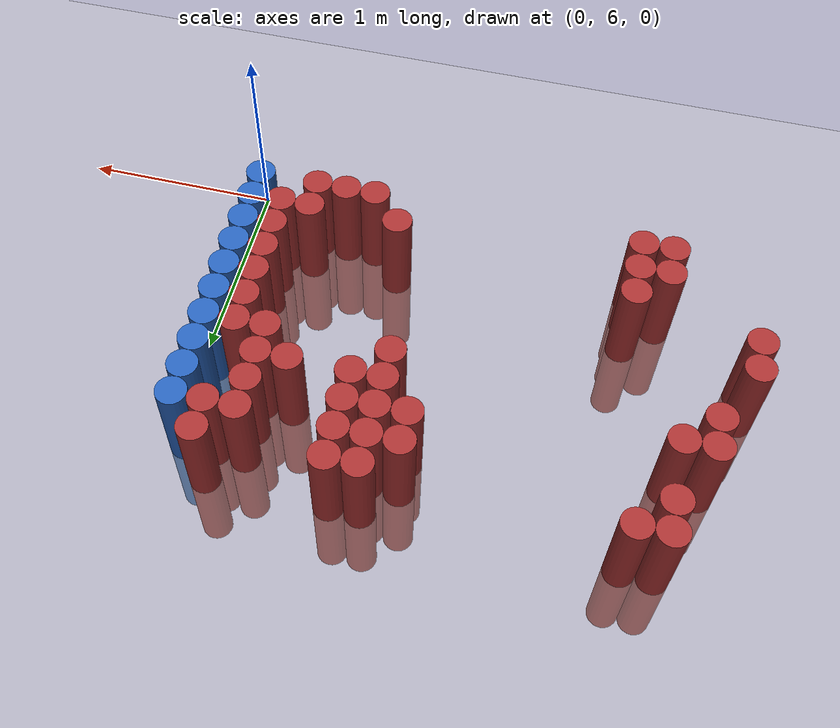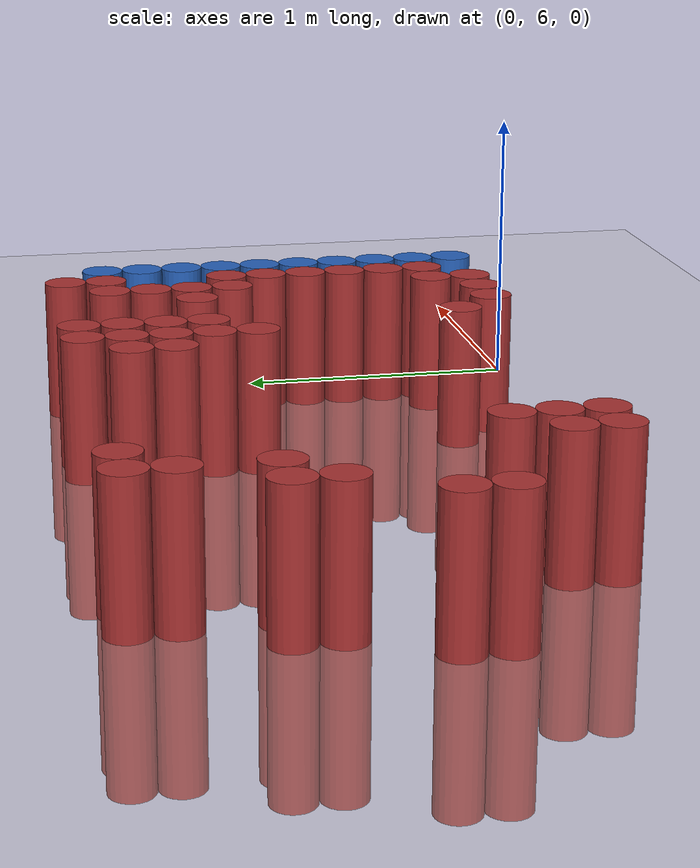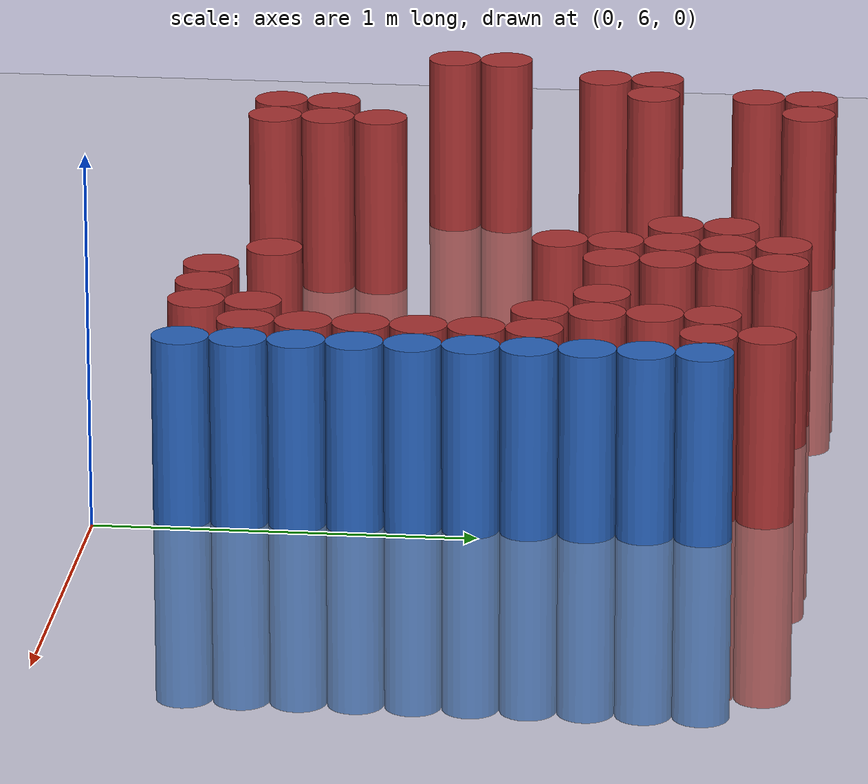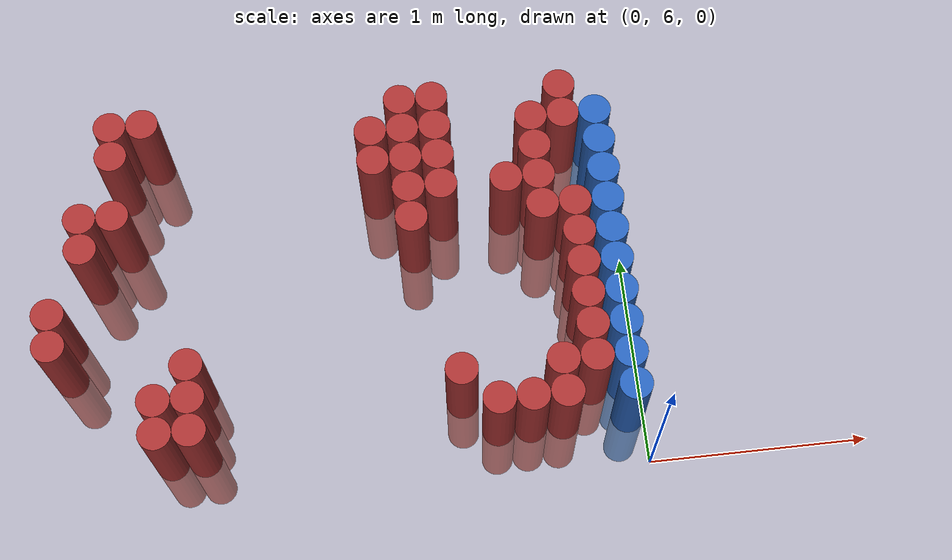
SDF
<sdf version="1.6">
 <world name="default">
  <model name="ground_plane">
   <static>1</static>
   <link name="link">
    <collision name="collision">
     <geometry><plane><normal>0 0 1</normal><size>100 100</size></plane></geometry>
     <surface><friction><ode><mu>100</mu><mu2>50</mu2></ode></friction></surface>
    </collision>
    <visual name="visual">
     <cast_shadows>0</cast_shadows>
     <geometry><plane><normal>0 0 1</normal><size>100 100</size></plane></geometry>
     <material>
      <script><uri>file://media/materials/scripts/gazebo.material</uri><name>Gazebo/Grey</name></script>
     </material>
    </visual>
   </link>
  </model>
  <model name="unit_cylinder_235">
   <static>1</static>
   <pose>-2.625000 6.675000 0.000000 0.000000 0.000000 0.000000</pose>
   <link name="link">
    <inertial>
     <mass>1</mass>
     <inertia><ixx>0.145833</ixx><ixy>0</ixy><ixz>0</ixz><iyy>0.145833</iyy><iyz>0</iyz><izz>0.125</izz></inertia>
    </inertial>
    <collision name="collision">
     <geometry><cylinder><radius>0.075000</radius><length>1</length></cylinder></geometry>
    </collision>
    <visual name="visual">
     <geometry><cylinder><radius>0.075000</radius><length>1</length></cylinder></geometry>
     <material>
      <ambient>0.648000 0.192000 0.192000 1</ambient>
      <diffuse>0.648000 0.192000 0.192000 1</diffuse>
     </material>
     <material>
      <script><name>Gazebo/Grey</name><uri>file://media/materials/scripts/gazebo.material</uri></script>
     </material>
    </visual>
   </link>
  </model>
  <model name="unit_cylinder_236">
   <static>1</static>
   <pose>-2.625000 6.825000 0.000000 0.000000 0.000000 0.000000</pose>
   <link name="link">
    <inertial>
     <mass>1</mass>
     <inertia><ixx>0.145833</ixx><ixy>0</ixy><ixz>0</ixz><iyy>0.145833</iyy><iyz>0</iyz><izz>0.125</izz></inertia>
    </inertial>
    <collision name="collision">
     <geometry><cylinder><radius>0.075000</radius><length>1</length></cylinder></geometry>
    </collision>
    <visual name="visual">
     <geometry><cylinder><radius>0.075000</radius><length>1</length></cylinder></geometry>
     <material>
      <ambient>0.648000 0.192000 0.192000 1</ambient>
      <diffuse>0.648000 0.192000 0.192000 1</diffuse>
     </material>
     <material>
      <script><name>Gazebo/Grey</name><uri>file://media/materials/scripts/gazebo.material</uri></script>
     </material>
    </visual>
   </link>
  </model>
  <model name="unit_cylinder_245">
   <static>1</static>
   <pose>-2.475000 7.125000 0.000000 0.000000 0.000000 0.000000</pose>
   <link name="link">
    <inertial>
     <mass>1</mass>
     <inertia><ixx>0.145833</ixx><ixy>0</ixy><ixz>0</ixz><iyy>0.145833</iyy><iyz>0</iyz><izz>0.125</izz></inertia>
    </inertial>
    <collision name="collision">
     <geometry><cylinder><radius>0.075000</radius><length>1</length></cylinder></geometry>
    </collision>
    <visual name="visual">
     <geometry><cylinder><radius>0.075000</radius><length>1</length></cylinder></geometry>
     <material>
      <ambient>0.648000 0.192000 0.192000 1</ambient>
      <diffuse>0.648000 0.192000 0.192000 1</diffuse>
     </material>
     <material>
      <script><name>Gazebo/Grey</name><uri>file://media/materials/scripts/gazebo.material</uri></script>
     </material>
    </visual>
   </link>
  </model>
  <model name="unit_cylinder_246">
   <static>1</static>
   <pose>-2.475000 7.275000 0.000000 0.000000 0.000000 0.000000</pose>
   <link name="link">
    <inertial>
     <mass>1</mass>
     <inertia><ixx>0.145833</ixx><ixy>0</ixy><ixz>0</ixz><iyy>0.145833</iyy><iyz>0</iyz><izz>0.125</izz></inertia>
    </inertial>
    <collision name="collision">
     <geometry><cylinder><radius>0.075000</radius><length>1</length></cylinder></geometry>
    </collision>
    <visual name="visual">
     <geometry><cylinder><radius>0.075000</radius><length>1</length></cylinder></geometry>
     <material>
      <ambient>0.648000 0.192000 0.192000 1</ambient>
      <diffuse>0.648000 0.192000 0.192000 1</diffuse>
     </material>
     <material>
      <script><name>Gazebo/Grey</name><uri>file://media/materials/scripts/gazebo.material</uri></script>
     </material>
    </visual>
   </link>
  </model>
  <model name="unit_cylinder_253">
   <static>1</static>
   <pose>-2.325000 7.275000 0.000000 0.000000 0.000000 0.000000</pose>
   <link name="link">
    <inertial>
     <mass>1</mass>
     <inertia><ixx>0.145833</ixx><ixy>0</ixy><ixz>0</ixz><iyy>0.145833</iyy><iyz>0</iyz><izz>0.125</izz></inertia>
    </inertial>
    <collision name="collision">
     <geometry><cylinder><radius>0.075000</radius><length>1</length></cylinder></geometry>
    </collision>
    <visual name="visual">
     <geometry><cylinder><radius>0.075000</radius><length>1</length></cylinder></geometry>
     <material>
      <ambient>0.648000 0.192000 0.192000 1</ambient>
      <diffuse>0.648000 0.192000 0.192000 1</diffuse>
     </material>
     <material>
      <script><name>Gazebo/Grey</name><uri>file://media/materials/scripts/gazebo.material</uri></script>
     </material>
    </visual>
   </link>
  </model>
  <model name="unit_cylinder_254">
   <static>1</static>
   <pose>-2.325000 7.575000 0.000000 0.000000 0.000000 0.000000</pose>
   <link name="link">
    <inertial>
     <mass>1</mass>
     <inertia><ixx>0.145833</ixx><ixy>0</ixy><ixz>0</ixz><iyy>0.145833</iyy><iyz>0</iyz><izz>0.125</izz></inertia>
    </inertial>
    <collision name="collision">
     <geometry><cylinder><radius>0.075000</radius><length>1</length></cylinder></geometry>
    </collision>
    <visual name="visual">
     <geometry><cylinder><radius>0.075000</radius><length>1</length></cylinder></geometry>
     <material>
      <ambient>0.648000 0.192000 0.192000 1</ambient>
      <diffuse>0.648000 0.192000 0.192000 1</diffuse>
     </material>
     <material>
      <script><name>Gazebo/Grey</name><uri>file://media/materials/scripts/gazebo.material</uri></script>
     </material>
    </visual>
   </link>
  </model>
  <model name="unit_cylinder_255">
   <static>1</static>
   <pose>-2.325000 7.725000 0.000000 0.000000 0.000000 0.000000</pose>
   <link name="link">
    <inertial>
     <mass>1</mass>
     <inertia><ixx>0.145833</ixx><ixy>0</ixy><ixz>0</ixz><iyy>0.145833</iyy><iyz>0</iyz><izz>0.125</izz></inertia>
    </inertial>
    <collision name="collision">
     <geometry><cylinder><radius>0.075000</radius><length>1</length></cylinder></geometry>
    </collision>
    <visual name="visual">
     <geometry><cylinder><radius>0.075000</radius><length>1</length></cylinder></geometry>
     <material>
      <ambient>0.648000 0.192000 0.192000 1</ambient>
      <diffuse>0.648000 0.192000 0.192000 1</diffuse>
     </material>
     <material>
      <script><name>Gazebo/Grey</name><uri>file://media/materials/scripts/gazebo.material</uri></script>
     </material>
    </visual>
   </link>
  </model>
  <model name="unit_cylinder_263">
   <static>1</static>
   <pose>-2.175000 6.225000 0.000000 0.000000 0.000000 0.000000</pose>
   <link name="link">
    <inertial>
     <mass>1</mass>
     <inertia><ixx>0.145833</ixx><ixy>0</ixy><ixz>0</ixz><iyy>0.145833</iyy><iyz>0</iyz><izz>0.125</izz></inertia>
    </inertial>
    <collision name="collision">
     <geometry><cylinder><radius>0.075000</radius><length>1</length></cylinder></geometry>
    </collision>
    <visual name="visual">
     <geometry><cylinder><radius>0.075000</radius><length>1</length></cylinder></geometry>
     <material>
      <ambient>0.648000 0.192000 0.192000 1</ambient>
      <diffuse>0.648000 0.192000 0.192000 1</diffuse>
     </material>
     <material>
      <script><name>Gazebo/Grey</name><uri>file://media/materials/scripts/gazebo.material</uri></script>
     </material>
    </visual>
   </link>
  </model>
  <model name="unit_cylinder_264">
   <static>1</static>
   <pose>-2.175000 6.375000 0.000000 0.000000 0.000000 0.000000</pose>
   <link name="link">
    <inertial>
     <mass>1</mass>
     <inertia><ixx>0.145833</ixx><ixy>0</ixy><ixz>0</ixz><iyy>0.145833</iyy><iyz>0</iyz><izz>0.125</izz></inertia>
    </inertial>
    <collision name="collision">
     <geometry><cylinder><radius>0.075000</radius><length>1</length></cylinder></geometry>
    </collision>
    <visual name="visual">
     <geometry><cylinder><radius>0.075000</radius><length>1</length></cylinder></geometry>
     <material>
      <ambient>0.648000 0.192000 0.192000 1</ambient>
      <diffuse>0.648000 0.192000 0.192000 1</diffuse>
     </material>
     <material>
      <script><name>Gazebo/Grey</name><uri>file://media/materials/scripts/gazebo.material</uri></script>
     </material>
    </visual>
   </link>
  </model>
  <model name="unit_cylinder_265">
   <static>1</static>
   <pose>-2.175000 7.725000 0.000000 0.000000 0.000000 0.000000</pose>
   <link name="link">
    <inertial>
     <mass>1</mass>
     <inertia><ixx>0.145833</ixx><ixy>0</ixy><ixz>0</ixz><iyy>0.145833</iyy><iyz>0</iyz><izz>0.125</izz></inertia>
    </inertial>
    <collision name="collision">
     <geometry><cylinder><radius>0.075000</radius><length>1</length></cylinder></geometry>
    </collision>
    <visual name="visual">
     <geometry><cylinder><radius>0.075000</radius><length>1</length></cylinder></geometry>
     <material>
      <ambient>0.648000 0.192000 0.192000 1</ambient>
      <diffuse>0.648000 0.192000 0.192000 1</diffuse>
     </material>
     <material>
      <script><name>Gazebo/Grey</name><uri>file://media/materials/scripts/gazebo.material</uri></script>
     </material>
    </visual>
   </link>
  </model>
  <model name="unit_cylinder_270">
   <static>1</static>
   <pose>-2.025000 6.225000 0.000000 0.000000 0.000000 0.000000</pose>
   <link name="link">
    <inertial>
     <mass>1</mass>
     <inertia><ixx>0.145833</ixx><ixy>0</ixy><ixz>0</ixz><iyy>0.145833</iyy><iyz>0</iyz><izz>0.125</izz></inertia>
    </inertial>
    <collision name="collision">
     <geometry><cylinder><radius>0.075000</radius><length>1</length></cylinder></geometry>
    </collision>
    <visual name="visual">
     <geometry><cylinder><radius>0.075000</radius><length>1</length></cylinder></geometry>
     <material>
      <ambient>0.648000 0.192000 0.192000 1</ambient>
      <diffuse>0.648000 0.192000 0.192000 1</diffuse>
     </material>
     <material>
      <script><name>Gazebo/Grey</name><uri>file://media/materials/scripts/gazebo.material</uri></script>
     </material>
    </visual>
   </link>
  </model>
  <model name="unit_cylinder_271">
   <static>1</static>
   <pose>-2.025000 6.375000 0.000000 0.000000 0.000000 0.000000</pose>
   <link name="link">
    <inertial>
     <mass>1</mass>
     <inertia><ixx>0.145833</ixx><ixy>0</ixy><ixz>0</ixz><iyy>0.145833</iyy><iyz>0</iyz><izz>0.125</izz></inertia>
    </inertial>
    <collision name="collision">
     <geometry><cylinder><radius>0.075000</radius><length>1</length></cylinder></geometry>
    </collision>
    <visual name="visual">
     <geometry><cylinder><radius>0.075000</radius><length>1</length></cylinder></geometry>
     <material>
      <ambient>0.648000 0.192000 0.192000 1</ambient>
      <diffuse>0.648000 0.192000 0.192000 1</diffuse>
     </material>
     <material>
      <script><name>Gazebo/Grey</name><uri>file://media/materials/scripts/gazebo.material</uri></script>
     </material>
    </visual>
   </link>
  </model>
  <model name="unit_cylinder_272">
   <static>1</static>
   <pose>-2.025000 6.525000 0.000000 0.000000 0.000000 0.000000</pose>
   <link name="link">
    <inertial>
     <mass>1</mass>
     <inertia><ixx>0.145833</ixx><ixy>0</ixy><ixz>0</ixz><iyy>0.145833</iyy><iyz>0</iyz><izz>0.125</izz></inertia>
    </inertial>
    <collision name="collision">
     <geometry><cylinder><radius>0.075000</radius><length>1</length></cylinder></geometry>
    </collision>
    <visual name="visual">
     <geometry><cylinder><radius>0.075000</radius><length>1</length></cylinder></geometry>
     <material>
      <ambient>0.648000 0.192000 0.192000 1</ambient>
      <diffuse>0.648000 0.192000 0.192000 1</diffuse>
     </material>
     <material>
      <script><name>Gazebo/Grey</name><uri>file://media/materials/scripts/gazebo.material</uri></script>
     </material>
    </visual>
   </link>
  </model>
  <model name="unit_cylinder_275">
   <static>1</static>
   <pose>-1.125000 7.425000 0.000000 0.000000 0.000000 0.000000</pose>
   <link name="link">
    <inertial>
     <mass>1</mass>
     <inertia><ixx>0.145833</ixx><ixy>0</ixy><ixz>0</ixz><iyy>0.145833</iyy><iyz>0</iyz><izz>0.125</izz></inertia>
    </inertial>
    <collision name="collision">
     <geometry><cylinder><radius>0.075000</radius><length>1</length></cylinder></geometry>
    </collision>
    <visual name="visual">
     <geometry><cylinder><radius>0.075000</radius><length>1</length></cylinder></geometry>
     <material>
      <ambient>0.648000 0.192000 0.192000 1</ambient>
      <diffuse>0.648000 0.192000 0.192000 1</diffuse>
     </material>
     <material>
      <script><name>Gazebo/Grey</name><uri>file://media/materials/scripts/gazebo.material</uri></script>
     </material>
    </visual>
   </link>
  </model>
  <model name="unit_cylinder_276">
   <static>1</static>
   <pose>-1.125000 7.575000 0.000000 0.000000 0.000000 0.000000</pose>
   <link name="link">
    <inertial>
     <mass>1</mass>
     <inertia><ixx>0.145833</ixx><ixy>0</ixy><ixz>0</ixz><iyy>0.145833</iyy><iyz>0</iyz><izz>0.125</izz></inertia>
    </inertial>
    <collision name="collision">
     <geometry><cylinder><radius>0.075000</radius><length>1</length></cylinder></geometry>
    </collision>
    <visual name="visual">
     <geometry><cylinder><radius>0.075000</radius><length>1</length></cylinder></geometry>
     <material>
      <ambient>0.648000 0.192000 0.192000 1</ambient>
      <diffuse>0.648000 0.192000 0.192000 1</diffuse>
     </material>
     <material>
      <script><name>Gazebo/Grey</name><uri>file://media/materials/scripts/gazebo.material</uri></script>
     </material>
    </visual>
   </link>
  </model>
  <model name="unit_cylinder_279">
   <static>1</static>
   <pose>-0.975000 7.125000 0.000000 0.000000 0.000000 0.000000</pose>
   <link name="link">
    <inertial>
     <mass>1</mass>
     <inertia><ixx>0.145833</ixx><ixy>0</ixy><ixz>0</ixz><iyy>0.145833</iyy><iyz>0</iyz><izz>0.125</izz></inertia>
    </inertial>
    <collision name="collision">
     <geometry><cylinder><radius>0.075000</radius><length>1</length></cylinder></geometry>
    </collision>
    <visual name="visual">
     <geometry><cylinder><radius>0.075000</radius><length>1</length></cylinder></geometry>
     <material>
      <ambient>0.648000 0.192000 0.192000 1</ambient>
      <diffuse>0.648000 0.192000 0.192000 1</diffuse>
     </material>
     <material>
      <script><name>Gazebo/Grey</name><uri>file://media/materials/scripts/gazebo.material</uri></script>
     </material>
    </visual>
   </link>
  </model>
  <model name="unit_cylinder_280">
   <static>1</static>
   <pose>-0.975000 7.275000 0.000000 0.000000 0.000000 0.000000</pose>
   <link name="link">
    <inertial>
     <mass>1</mass>
     <inertia><ixx>0.145833</ixx><ixy>0</ixy><ixz>0</ixz><iyy>0.145833</iyy><iyz>0</iyz><izz>0.125</izz></inertia>
    </inertial>
    <collision name="collision">
     <geometry><cylinder><radius>0.075000</radius><length>1</length></cylinder></geometry>
    </collision>
    <visual name="visual">
     <geometry><cylinder><radius>0.075000</radius><length>1</length></cylinder></geometry>
     <material>
      <ambient>0.648000 0.192000 0.192000 1</ambient>
      <diffuse>0.648000 0.192000 0.192000 1</diffuse>
     </material>
     <material>
      <script><name>Gazebo/Grey</name><uri>file://media/materials/scripts/gazebo.material</uri></script>
     </material>
    </visual>
   </link>
  </model>
  <model name="unit_cylinder_281">
   <static>1</static>
   <pose>-0.975000 7.425000 0.000000 0.000000 0.000000 0.000000</pose>
   <link name="link">
    <inertial>
     <mass>1</mass>
     <inertia><ixx>0.145833</ixx><ixy>0</ixy><ixz>0</ixz><iyy>0.145833</iyy><iyz>0</iyz><izz>0.125</izz></inertia>
    </inertial>
    <collision name="collision">
     <geometry><cylinder><radius>0.075000</radius><length>1</length></cylinder></geometry>
    </collision>
    <visual name="visual">
     <geometry><cylinder><radius>0.075000</radius><length>1</length></cylinder></geometry>
     <material>
      <ambient>0.648000 0.192000 0.192000 1</ambient>
      <diffuse>0.648000 0.192000 0.192000 1</diffuse>
     </material>
     <material>
      <script><name>Gazebo/Grey</name><uri>file://media/materials/scripts/gazebo.material</uri></script>
     </material>
    </visual>
   </link>
  </model>
  <model name="unit_cylinder_282">
   <static>1</static>
   <pose>-0.975000 7.575000 0.000000 0.000000 0.000000 0.000000</pose>
   <link name="link">
    <inertial>
     <mass>1</mass>
     <inertia><ixx>0.145833</ixx><ixy>0</ixy><ixz>0</ixz><iyy>0.145833</iyy><iyz>0</iyz><izz>0.125</izz></inertia>
    </inertial>
    <collision name="collision">
     <geometry><cylinder><radius>0.075000</radius><length>1</length></cylinder></geometry>
    </collision>
    <visual name="visual">
     <geometry><cylinder><radius>0.075000</radius><length>1</length></cylinder></geometry>
     <material>
      <ambient>0.648000 0.192000 0.192000 1</ambient>
      <diffuse>0.648000 0.192000 0.192000 1</diffuse>
     </material>
     <material>
      <script><name>Gazebo/Grey</name><uri>file://media/materials/scripts/gazebo.material</uri></script>
     </material>
    </visual>
   </link>
  </model>
  <model name="unit_cylinder_283">
   <static>1</static>
   <pose>-0.975000 7.725000 0.000000 0.000000 0.000000 0.000000</pose>
   <link name="link">
    <inertial>
     <mass>1</mass>
     <inertia><ixx>0.145833</ixx><ixy>0</ixy><ixz>0</ixz><iyy>0.145833</iyy><iyz>0</iyz><izz>0.125</izz></inertia>
    </inertial>
    <collision name="collision">
     <geometry><cylinder><radius>0.075000</radius><length>1</length></cylinder></geometry>
    </collision>
    <visual name="visual">
     <geometry><cylinder><radius>0.075000</radius><length>1</length></cylinder></geometry>
     <material>
      <ambient>0.648000 0.192000 0.192000 1</ambient>
      <diffuse>0.648000 0.192000 0.192000 1</diffuse>
     </material>
     <material>
      <script><name>Gazebo/Grey</name><uri>file://media/materials/scripts/gazebo.material</uri></script>
     </material>
    </visual>
   </link>
  </model>
  <model name="unit_cylinder_285">
   <static>1</static>
   <pose>-0.825000 6.375000 0.000000 0.000000 0.000000 0.000000</pose>
   <link name="link">
    <inertial>
     <mass>1</mass>
     <inertia><ixx>0.145833</ixx><ixy>0</ixy><ixz>0</ixz><iyy>0.145833</iyy><iyz>0</iyz><izz>0.125</izz></inertia>
    </inertial>
    <collision name="collision">
     <geometry><cylinder><radius>0.075000</radius><length>1</length></cylinder></geometry>
    </collision>
    <visual name="visual">
     <geometry><cylinder><radius>0.075000</radius><length>1</length></cylinder></geometry>
     <material>
      <ambient>0.648000 0.192000 0.192000 1</ambient>
      <diffuse>0.648000 0.192000 0.192000 1</diffuse>
     </material>
     <material>
      <script><name>Gazebo/Grey</name><uri>file://media/materials/scripts/gazebo.material</uri></script>
     </material>
    </visual>
   </link>
  </model>
  <model name="unit_cylinder_286">
   <static>1</static>
   <pose>-0.825000 7.275000 0.000000 0.000000 0.000000 0.000000</pose>
   <link name="link">
    <inertial>
     <mass>1</mass>
     <inertia><ixx>0.145833</ixx><ixy>0</ixy><ixz>0</ixz><iyy>0.145833</iyy><iyz>0</iyz><izz>0.125</izz></inertia>
    </inertial>
    <collision name="collision">
     <geometry><cylinder><radius>0.075000</radius><length>1</length></cylinder></geometry>
    </collision>
    <visual name="visual">
     <geometry><cylinder><radius>0.075000</radius><length>1</length></cylinder></geometry>
     <material>
      <ambient>0.648000 0.192000 0.192000 1</ambient>
      <diffuse>0.648000 0.192000 0.192000 1</diffuse>
     </material>
     <material>
      <script><name>Gazebo/Grey</name><uri>file://media/materials/scripts/gazebo.material</uri></script>
     </material>
    </visual>
   </link>
  </model>
  <model name="unit_cylinder_287">
   <static>1</static>
   <pose>-0.825000 7.425000 0.000000 0.000000 0.000000 0.000000</pose>
   <link name="link">
    <inertial>
     <mass>1</mass>
     <inertia><ixx>0.145833</ixx><ixy>0</ixy><ixz>0</ixz><iyy>0.145833</iyy><iyz>0</iyz><izz>0.125</izz></inertia>
    </inertial>
    <collision name="collision">
     <geometry><cylinder><radius>0.075000</radius><length>1</length></cylinder></geometry>
    </collision>
    <visual name="visual">
     <geometry><cylinder><radius>0.075000</radius><length>1</length></cylinder></geometry>
     <material>
      <ambient>0.648000 0.192000 0.192000 1</ambient>
      <diffuse>0.648000 0.192000 0.192000 1</diffuse>
     </material>
     <material>
      <script><name>Gazebo/Grey</name><uri>file://media/materials/scripts/gazebo.material</uri></script>
     </material>
    </visual>
   </link>
  </model>
  <model name="unit_cylinder_288">
   <static>1</static>
   <pose>-0.825000 7.575000 0.000000 0.000000 0.000000 0.000000</pose>
   <link name="link">
    <inertial>
     <mass>1</mass>
     <inertia><ixx>0.145833</ixx><ixy>0</ixy><ixz>0</ixz><iyy>0.145833</iyy><iyz>0</iyz><izz>0.125</izz></inertia>
    </inertial>
    <collision name="collision">
     <geometry><cylinder><radius>0.075000</radius><length>1</length></cylinder></geometry>
    </collision>
    <visual name="visual">
     <geometry><cylinder><radius>0.075000</radius><length>1</length></cylinder></geometry>
     <material>
      <ambient>0.648000 0.192000 0.192000 1</ambient>
      <diffuse>0.648000 0.192000 0.192000 1</diffuse>
     </material>
     <material>
      <script><name>Gazebo/Grey</name><uri>file://media/materials/scripts/gazebo.material</uri></script>
     </material>
    </visual>
   </link>
  </model>
  <model name="unit_cylinder_289">
   <static>1</static>
   <pose>-0.825000 7.725000 0.000000 0.000000 0.000000 0.000000</pose>
   <link name="link">
    <inertial>
     <mass>1</mass>
     <inertia><ixx>0.145833</ixx><ixy>0</ixy><ixz>0</ixz><iyy>0.145833</iyy><iyz>0</iyz><izz>0.125</izz></inertia>
    </inertial>
    <collision name="collision">
     <geometry><cylinder><radius>0.075000</radius><length>1</length></cylinder></geometry>
    </collision>
    <visual name="visual">
     <geometry><cylinder><radius>0.075000</radius><length>1</length></cylinder></geometry>
     <material>
      <ambient>0.648000 0.192000 0.192000 1</ambient>
      <diffuse>0.648000 0.192000 0.192000 1</diffuse>
     </material>
     <material>
      <script><name>Gazebo/Grey</name><uri>file://media/materials/scripts/gazebo.material</uri></script>
     </material>
    </visual>
   </link>
  </model>
  <model name="unit_cylinder_294">
   <static>1</static>
   <pose>-0.675000 6.225000 0.000000 0.000000 0.000000 0.000000</pose>
   <link name="link">
    <inertial>
     <mass>1</mass>
     <inertia><ixx>0.145833</ixx><ixy>0</ixy><ixz>0</ixz><iyy>0.145833</iyy><iyz>0</iyz><izz>0.125</izz></inertia>
    </inertial>
    <collision name="collision">
     <geometry><cylinder><radius>0.075000</radius><length>1</length></cylinder></geometry>
    </collision>
    <visual name="visual">
     <geometry><cylinder><radius>0.075000</radius><length>1</length></cylinder></geometry>
     <material>
      <ambient>0.648000 0.192000 0.192000 1</ambient>
      <diffuse>0.648000 0.192000 0.192000 1</diffuse>
     </material>
     <material>
      <script><name>Gazebo/Grey</name><uri>file://media/materials/scripts/gazebo.material</uri></script>
     </material>
    </visual>
   </link>
  </model>
  <model name="unit_cylinder_298">
   <static>1</static>
   <pose>-0.525000 6.225000 0.000000 0.000000 0.000000 0.000000</pose>
   <link name="link">
    <inertial>
     <mass>1</mass>
     <inertia><ixx>0.145833</ixx><ixy>0</ixy><ixz>0</ixz><iyy>0.145833</iyy><iyz>0</iyz><izz>0.125</izz></inertia>
    </inertial>
    <collision name="collision">
     <geometry><cylinder><radius>0.075000</radius><length>1</length></cylinder></geometry>
    </collision>
    <visual name="visual">
     <geometry><cylinder><radius>0.075000</radius><length>1</length></cylinder></geometry>
     <material>
      <ambient>0.648000 0.192000 0.192000 1</ambient>
      <diffuse>0.648000 0.192000 0.192000 1</diffuse>
     </material>
     <material>
      <script><name>Gazebo/Grey</name><uri>file://media/materials/scripts/gazebo.material</uri></script>
     </material>
    </visual>
   </link>
  </model>
  <model name="unit_cylinder_299">
   <static>1</static>
   <pose>-0.525000 7.275000 0.000000 0.000000 0.000000 0.000000</pose>
   <link name="link">
    <inertial>
     <mass>1</mass>
     <inertia><ixx>0.145833</ixx><ixy>0</ixy><ixz>0</ixz><iyy>0.145833</iyy><iyz>0</iyz><izz>0.125</izz></inertia>
    </inertial>
    <collision name="collision">
     <geometry><cylinder><radius>0.075000</radius><length>1</length></cylinder></geometry>
    </collision>
    <visual name="visual">
     <geometry><cylinder><radius>0.075000</radius><length>1</length></cylinder></geometry>
     <material>
      <ambient>0.648000 0.192000 0.192000 1</ambient>
      <diffuse>0.648000 0.192000 0.192000 1</diffuse>
     </material>
     <material>
      <script><name>Gazebo/Grey</name><uri>file://media/materials/scripts/gazebo.material</uri></script>
     </material>
    </visual>
   </link>
  </model>
  <model name="unit_cylinder_303">
   <static>1</static>
   <pose>-0.375000 6.225000 0.000000 0.000000 0.000000 0.000000</pose>
   <link name="link">
    <inertial>
     <mass>1</mass>
     <inertia><ixx>0.145833</ixx><ixy>0</ixy><ixz>0</ixz><iyy>0.145833</iyy><iyz>0</iyz><izz>0.125</izz></inertia>
    </inertial>
    <collision name="collision">
     <geometry><cylinder><radius>0.075000</radius><length>1</length></cylinder></geometry>
    </collision>
    <visual name="visual">
     <geometry><cylinder><radius>0.075000</radius><length>1</length></cylinder></geometry>
     <material>
      <ambient>0.648000 0.192000 0.192000 1</ambient>
      <diffuse>0.648000 0.192000 0.192000 1</diffuse>
     </material>
     <material>
      <script><name>Gazebo/Grey</name><uri>file://media/materials/scripts/gazebo.material</uri></script>
     </material>
    </visual>
   </link>
  </model>
  <model name="unit_cylinder_304">
   <static>1</static>
   <pose>-0.375000 6.375000 0.000000 0.000000 0.000000 0.000000</pose>
   <link name="link">
    <inertial>
     <mass>1</mass>
     <inertia><ixx>0.145833</ixx><ixy>0</ixy><ixz>0</ixz><iyy>0.145833</iyy><iyz>0</iyz><izz>0.125</izz></inertia>
    </inertial>
    <collision name="collision">
     <geometry><cylinder><radius>0.075000</radius><length>1</length></cylinder></geometry>
    </collision>
    <visual name="visual">
     <geometry><cylinder><radius>0.075000</radius><length>1</length></cylinder></geometry>
     <material>
      <ambient>0.648000 0.192000 0.192000 1</ambient>
      <diffuse>0.648000 0.192000 0.192000 1</diffuse>
     </material>
     <material>
      <script><name>Gazebo/Grey</name><uri>file://media/materials/scripts/gazebo.material</uri></script>
     </material>
    </visual>
   </link>
  </model>
  <model name="unit_cylinder_305">
   <static>1</static>
   <pose>-0.375000 7.125000 0.000000 0.000000 0.000000 0.000000</pose>
   <link name="link">
    <inertial>
     <mass>1</mass>
     <inertia><ixx>0.145833</ixx><ixy>0</ixy><ixz>0</ixz><iyy>0.145833</iyy><iyz>0</iyz><izz>0.125</izz></inertia>
    </inertial>
    <collision name="collision">
     <geometry><cylinder><radius>0.075000</radius><length>1</length></cylinder></geometry>
    </collision>
    <visual name="visual">
     <geometry><cylinder><radius>0.075000</radius><length>1</length></cylinder></geometry>
     <material>
      <ambient>0.648000 0.192000 0.192000 1</ambient>
      <diffuse>0.648000 0.192000 0.192000 1</diffuse>
     </material>
     <material>
      <script><name>Gazebo/Grey</name><uri>file://media/materials/scripts/gazebo.material</uri></script>
     </material>
    </visual>
   </link>
  </model>
  <model name="unit_cylinder_306">
   <static>1</static>
   <pose>-0.375000 7.275000 0.000000 0.000000 0.000000 0.000000</pose>
   <link name="link">
    <inertial>
     <mass>1</mass>
     <inertia><ixx>0.145833</ixx><ixy>0</ixy><ixz>0</ixz><iyy>0.145833</iyy><iyz>0</iyz><izz>0.125</izz></inertia>
    </inertial>
    <collision name="collision">
     <geometry><cylinder><radius>0.075000</radius><length>1</length></cylinder></geometry>
    </collision>
    <visual name="visual">
     <geometry><cylinder><radius>0.075000</radius><length>1</length></cylinder></geometry>
     <material>
      <ambient>0.648000 0.192000 0.192000 1</ambient>
      <diffuse>0.648000 0.192000 0.192000 1</diffuse>
     </material>
     <material>
      <script><name>Gazebo/Grey</name><uri>file://media/materials/scripts/gazebo.material</uri></script>
     </material>
    </visual>
   </link>
  </model>
  <model name="unit_cylinder_307">
   <static>1</static>
   <pose>-0.375000 7.425000 0.000000 0.000000 0.000000 0.000000</pose>
   <link name="link">
    <inertial>
     <mass>1</mass>
     <inertia><ixx>0.145833</ixx><ixy>0</ixy><ixz>0</ixz><iyy>0.145833</iyy><iyz>0</iyz><izz>0.125</izz></inertia>
    </inertial>
    <collision name="collision">
     <geometry><cylinder><radius>0.075000</radius><length>1</length></cylinder></geometry>
    </collision>
    <visual name="visual">
     <geometry><cylinder><radius>0.075000</radius><length>1</length></cylinder></geometry>
     <material>
      <ambient>0.648000 0.192000 0.192000 1</ambient>
      <diffuse>0.648000 0.192000 0.192000 1</diffuse>
     </material>
     <material>
      <script><name>Gazebo/Grey</name><uri>file://media/materials/scripts/gazebo.material</uri></script>
     </material>
    </visual>
   </link>
  </model>
  <model name="unit_cylinder_308">
   <static>1</static>
   <pose>-0.375000 7.575000 0.000000 0.000000 0.000000 0.000000</pose>
   <link name="link">
    <inertial>
     <mass>1</mass>
     <inertia><ixx>0.145833</ixx><ixy>0</ixy><ixz>0</ixz><iyy>0.145833</iyy><iyz>0</iyz><izz>0.125</izz></inertia>
    </inertial>
    <collision name="collision">
     <geometry><cylinder><radius>0.075000</radius><length>1</length></cylinder></geometry>
    </collision>
    <visual name="visual">
     <geometry><cylinder><radius>0.075000</radius><length>1</length></cylinder></geometry>
     <material>
      <ambient>0.648000 0.192000 0.192000 1</ambient>
      <diffuse>0.648000 0.192000 0.192000 1</diffuse>
     </material>
     <material>
      <script><name>Gazebo/Grey</name><uri>file://media/materials/scripts/gazebo.material</uri></script>
     </material>
    </visual>
   </link>
  </model>
  <model name="unit_cylinder_318">
   <static>1</static>
   <pose>-0.225000 6.375000 0.000000 0.000000 0.000000 0.000000</pose>
   <link name="link">
    <inertial>
     <mass>1</mass>
     <inertia><ixx>0.145833</ixx><ixy>0</ixy><ixz>0</ixz><iyy>0.145833</iyy><iyz>0</iyz><izz>0.125</izz></inertia>
    </inertial>
    <collision name="collision">
     <geometry><cylinder><radius>0.075000</radius><length>1</length></cylinder></geometry>
    </collision>
    <visual name="visual">
     <geometry><cylinder><radius>0.075000</radius><length>1</length></cylinder></geometry>
     <material>
      <ambient>0.648000 0.192000 0.192000 1</ambient>
      <diffuse>0.648000 0.192000 0.192000 1</diffuse>
     </material>
     <material>
      <script><name>Gazebo/Grey</name><uri>file://media/materials/scripts/gazebo.material</uri></script>
     </material>
    </visual>
   </link>
  </model>
  <model name="unit_cylinder_319">
   <static>1</static>
   <pose>-0.225000 6.525000 0.000000 0.000000 0.000000 0.000000</pose>
   <link name="link">
    <inertial>
     <mass>1</mass>
     <inertia><ixx>0.145833</ixx><ixy>0</ixy><ixz>0</ixz><iyy>0.145833</iyy><iyz>0</iyz><izz>0.125</izz></inertia>
    </inertial>
    <collision name="collision">
     <geometry><cylinder><radius>0.075000</radius><length>1</length></cylinder></geometry>
    </collision>
    <visual name="visual">
     <geometry><cylinder><radius>0.075000</radius><length>1</length></cylinder></geometry>
     <material>
      <ambient>0.648000 0.192000 0.192000 1</ambient>
      <diffuse>0.648000 0.192000 0.192000 1</diffuse>
     </material>
     <material>
      <script><name>Gazebo/Grey</name><uri>file://media/materials/scripts/gazebo.material</uri></script>
     </material>
    </visual>
   </link>
  </model>
  <model name="unit_cylinder_320">
   <static>1</static>
   <pose>-0.225000 6.675000 0.000000 0.000000 0.000000 0.000000</pose>
   <link name="link">
    <inertial>
     <mass>1</mass>
     <inertia><ixx>0.145833</ixx><ixy>0</ixy><ixz>0</ixz><iyy>0.145833</iyy><iyz>0</iyz><izz>0.125</izz></inertia>
    </inertial>
    <collision name="collision">
     <geometry><cylinder><radius>0.075000</radius><length>1</length></cylinder></geometry>
    </collision>
    <visual name="visual">
     <geometry><cylinder><radius>0.075000</radius><length>1</length></cylinder></geometry>
     <material>
      <ambient>0.648000 0.192000 0.192000 1</ambient>
      <diffuse>0.648000 0.192000 0.192000 1</diffuse>
     </material>
     <material>
      <script><name>Gazebo/Grey</name><uri>file://media/materials/scripts/gazebo.material</uri></script>
     </material>
    </visual>
   </link>
  </model>
  <model name="unit_cylinder_321">
   <static>1</static>
   <pose>-0.225000 6.825000 0.000000 0.000000 0.000000 0.000000</pose>
   <link name="link">
    <inertial>
     <mass>1</mass>
     <inertia><ixx>0.145833</ixx><ixy>0</ixy><ixz>0</ixz><iyy>0.145833</iyy><iyz>0</iyz><izz>0.125</izz></inertia>
    </inertial>
    <collision name="collision">
     <geometry><cylinder><radius>0.075000</radius><length>1</length></cylinder></geometry>
    </collision>
    <visual name="visual">
     <geometry><cylinder><radius>0.075000</radius><length>1</length></cylinder></geometry>
     <material>
      <ambient>0.648000 0.192000 0.192000 1</ambient>
      <diffuse>0.648000 0.192000 0.192000 1</diffuse>
     </material>
     <material>
      <script><name>Gazebo/Grey</name><uri>file://media/materials/scripts/gazebo.material</uri></script>
     </material>
    </visual>
   </link>
  </model>
  <model name="unit_cylinder_322">
   <static>1</static>
   <pose>-0.225000 6.975000 0.000000 0.000000 0.000000 0.000000</pose>
   <link name="link">
    <inertial>
     <mass>1</mass>
     <inertia><ixx>0.145833</ixx><ixy>0</ixy><ixz>0</ixz><iyy>0.145833</iyy><iyz>0</iyz><izz>0.125</izz></inertia>
    </inertial>
    <collision name="collision">
     <geometry><cylinder><radius>0.075000</radius><length>1</length></cylinder></geometry>
    </collision>
    <visual name="visual">
     <geometry><cylinder><radius>0.075000</radius><length>1</length></cylinder></geometry>
     <material>
      <ambient>0.648000 0.192000 0.192000 1</ambient>
      <diffuse>0.648000 0.192000 0.192000 1</diffuse>
     </material>
     <material>
      <script><name>Gazebo/Grey</name><uri>file://media/materials/scripts/gazebo.material</uri></script>
     </material>
    </visual>
   </link>
  </model>
  <model name="unit_cylinder_323">
   <static>1</static>
   <pose>-0.225000 7.125000 0.000000 0.000000 0.000000 0.000000</pose>
   <link name="link">
    <inertial>
     <mass>1</mass>
     <inertia><ixx>0.145833</ixx><ixy>0</ixy><ixz>0</ixz><iyy>0.145833</iyy><iyz>0</iyz><izz>0.125</izz></inertia>
    </inertial>
    <collision name="collision">
     <geometry><cylinder><radius>0.075000</radius><length>1</length></cylinder></geometry>
    </collision>
    <visual name="visual">
     <geometry><cylinder><radius>0.075000</radius><length>1</length></cylinder></geometry>
     <material>
      <ambient>0.648000 0.192000 0.192000 1</ambient>
      <diffuse>0.648000 0.192000 0.192000 1</diffuse>
     </material>
     <material>
      <script><name>Gazebo/Grey</name><uri>file://media/materials/scripts/gazebo.material</uri></script>
     </material>
    </visual>
   </link>
  </model>
  <model name="unit_cylinder_324">
   <static>1</static>
   <pose>-0.225000 7.575000 0.000000 0.000000 0.000000 0.000000</pose>
   <link name="link">
    <inertial>
     <mass>1</mass>
     <inertia><ixx>0.145833</ixx><ixy>0</ixy><ixz>0</ixz><iyy>0.145833</iyy><iyz>0</iyz><izz>0.125</izz></inertia>
    </inertial>
    <collision name="collision">
     <geometry><cylinder><radius>0.075000</radius><length>1</length></cylinder></geometry>
    </collision>
    <visual name="visual">
     <geometry><cylinder><radius>0.075000</radius><length>1</length></cylinder></geometry>
     <material>
      <ambient>0.648000 0.192000 0.192000 1</ambient>
      <diffuse>0.648000 0.192000 0.192000 1</diffuse>
     </material>
     <material>
      <script><name>Gazebo/Grey</name><uri>file://media/materials/scripts/gazebo.material</uri></script>
     </material>
    </visual>
   </link>
  </model>
  <model name="unit_cylinder_325">
   <static>1</static>
   <pose>-0.225000 7.725000 0.000000 0.000000 0.000000 0.000000</pose>
   <link name="link">
    <inertial>
     <mass>1</mass>
     <inertia><ixx>0.145833</ixx><ixy>0</ixy><ixz>0</ixz><iyy>0.145833</iyy><iyz>0</iyz><izz>0.125</izz></inertia>
    </inertial>
    <collision name="collision">
     <geometry><cylinder><radius>0.075000</radius><length>1</length></cylinder></geometry>
    </collision>
    <visual name="visual">
     <geometry><cylinder><radius>0.075000</radius><length>1</length></cylinder></geometry>
     <material>
      <ambient>0.648000 0.192000 0.192000 1</ambient>
      <diffuse>0.648000 0.192000 0.192000 1</diffuse>
     </material>
     <material>
      <script><name>Gazebo/Grey</name><uri>file://media/materials/scripts/gazebo.material</uri></script>
     </material>
    </visual>
   </link>
  </model>
  <model name="unit_cylinder_338">
   <static>1</static>
   <pose>-0.075000 6.225000 0.000000 0.000000 0.000000 0.000000</pose>
   <link name="link">
    <inertial>
     <mass>1</mass>
     <inertia><ixx>0.145833</ixx><ixy>0</ixy><ixz>0</ixz><iyy>0.145833</iyy><iyz>0</iyz><izz>0.125</izz></inertia>
    </inertial>
    <collision name="collision">
     <geometry><cylinder><radius>0.075000</radius><length>1</length></cylinder></geometry>
    </collision>
    <visual name="visual">
     <geometry><cylinder><radius>0.075000</radius><length>1</length></cylinder></geometry>
     <material>
      <ambient>0.152000 0.379000 0.720000 1</ambient>
      <diffuse>0.152000 0.379000 0.720000 1</diffuse>
     </material>
     <material>
      <script><name>Gazebo/Grey</name><uri>file://media/materials/scripts/gazebo.material</uri></script>
     </material>
    </visual>
   </link>
  </model>
  <model name="unit_cylinder_339">
   <static>1</static>
   <pose>-0.075000 6.375000 0.000000 0.000000 0.000000 0.000000</pose>
   <link name="link">
    <inertial>
     <mass>1</mass>
     <inertia><ixx>0.145833</ixx><ixy>0</ixy><ixz>0</ixz><iyy>0.145833</iyy><iyz>0</iyz><izz>0.125</izz></inertia>
    </inertial>
    <collision name="collision">
     <geometry><cylinder><radius>0.075000</radius><length>1</length></cylinder></geometry>
    </collision>
    <visual name="visual">
     <geometry><cylinder><radius>0.075000</radius><length>1</length></cylinder></geometry>
     <material>
      <ambient>0.152000 0.379000 0.720000 1</ambient>
      <diffuse>0.152000 0.379000 0.720000 1</diffuse>
     </material>
     <material>
      <script><name>Gazebo/Grey</name><uri>file://media/materials/scripts/gazebo.material</uri></script>
     </material>
    </visual>
   </link>
  </model>
  <model name="unit_cylinder_340">
   <static>1</static>
   <pose>-0.075000 6.525000 0.000000 0.000000 0.000000 0.000000</pose>
   <link name="link">
    <inertial>
     <mass>1</mass>
     <inertia><ixx>0.145833</ixx><ixy>0</ixy><ixz>0</ixz><iyy>0.145833</iyy><iyz>0</iyz><izz>0.125</izz></inertia>
    </inertial>
    <collision name="collision">
     <geometry><cylinder><radius>0.075000</radius><length>1</length></cylinder></geometry>
    </collision>
    <visual name="visual">
     <geometry><cylinder><radius>0.075000</radius><length>1</length></cylinder></geometry>
     <material>
      <ambient>0.152000 0.379000 0.720000 1</ambient>
      <diffuse>0.152000 0.379000 0.720000 1</diffuse>
     </material>
     <material>
      <script><name>Gazebo/Grey</name><uri>file://media/materials/scripts/gazebo.material</uri></script>
     </material>
    </visual>
   </link>
  </model>
  <model name="unit_cylinder_341">
   <static>1</static>
   <pose>-0.075000 6.675000 0.000000 0.000000 0.000000 0.000000</pose>
   <link name="link">
    <inertial>
     <mass>1</mass>
     <inertia><ixx>0.145833</ixx><ixy>0</ixy><ixz>0</ixz><iyy>0.145833</iyy><iyz>0</iyz><izz>0.125</izz></inertia>
    </inertial>
    <collision name="collision">
     <geometry><cylinder><radius>0.075000</radius><length>1</length></cylinder></geometry>
    </collision>
    <visual name="visual">
     <geometry><cylinder><radius>0.075000</radius><length>1</length></cylinder></geometry>
     <material>
      <ambient>0.152000 0.379000 0.720000 1</ambient>
      <diffuse>0.152000 0.379000 0.720000 1</diffuse>
     </material>
     <material>
      <script><name>Gazebo/Grey</name><uri>file://media/materials/scripts/gazebo.material</uri></script>
     </material>
    </visual>
   </link>
  </model>
  <model name="unit_cylinder_342">
   <static>1</static>
   <pose>-0.075000 6.825000 0.000000 0.000000 0.000000 0.000000</pose>
   <link name="link">
    <inertial>
     <mass>1</mass>
     <inertia><ixx>0.145833</ixx><ixy>0</ixy><ixz>0</ixz><iyy>0.145833</iyy><iyz>0</iyz><izz>0.125</izz></inertia>
    </inertial>
    <collision name="collision">
     <geometry><cylinder><radius>0.075000</radius><length>1</length></cylinder></geometry>
    </collision>
    <visual name="visual">
     <geometry><cylinder><radius>0.075000</radius><length>1</length></cylinder></geometry>
     <material>
      <ambient>0.152000 0.379000 0.720000 1</ambient>
      <diffuse>0.152000 0.379000 0.720000 1</diffuse>
     </material>
     <material>
      <script><name>Gazebo/Grey</name><uri>file://media/materials/scripts/gazebo.material</uri></script>
     </material>
    </visual>
   </link>
  </model>
  <model name="unit_cylinder_343">
   <static>1</static>
   <pose>-0.075000 6.975000 0.000000 0.000000 0.000000 0.000000</pose>
   <link name="link">
    <inertial>
     <mass>1</mass>
     <inertia><ixx>0.145833</ixx><ixy>0</ixy><ixz>0</ixz><iyy>0.145833</iyy><iyz>0</iyz><izz>0.125</izz></inertia>
    </inertial>
    <collision name="collision">
     <geometry><cylinder><radius>0.075000</radius><length>1</length></cylinder></geometry>
    </collision>
    <visual name="visual">
     <geometry><cylinder><radius>0.075000</radius><length>1</length></cylinder></geometry>
     <material>
      <ambient>0.152000 0.379000 0.720000 1</ambient>
      <diffuse>0.152000 0.379000 0.720000 1</diffuse>
     </material>
     <material>
      <script><name>Gazebo/Grey</name><uri>file://media/materials/scripts/gazebo.material</uri></script>
     </material>
    </visual>
   </link>
  </model>
  <model name="unit_cylinder_344">
   <static>1</static>
   <pose>-0.075000 7.125000 0.000000 0.000000 0.000000 0.000000</pose>
   <link name="link">
    <inertial>
     <mass>1</mass>
     <inertia><ixx>0.145833</ixx><ixy>0</ixy><ixz>0</ixz><iyy>0.145833</iyy><iyz>0</iyz><izz>0.125</izz></inertia>
    </inertial>
    <collision name="collision">
     <geometry><cylinder><radius>0.075000</radius><length>1</length></cylinder></geometry>
    </collision>
    <visual name="visual">
     <geometry><cylinder><radius>0.075000</radius><length>1</length></cylinder></geometry>
     <material>
      <ambient>0.152000 0.379000 0.720000 1</ambient>
      <diffuse>0.152000 0.379000 0.720000 1</diffuse>
     </material>
     <material>
      <script><name>Gazebo/Grey</name><uri>file://media/materials/scripts/gazebo.material</uri></script>
     </material>
    </visual>
   </link>
  </model>
  <model name="unit_cylinder_345">
   <static>1</static>
   <pose>-0.075000 7.275000 0.000000 0.000000 0.000000 0.000000</pose>
   <link name="link">
    <inertial>
     <mass>1</mass>
     <inertia><ixx>0.145833</ixx><ixy>0</ixy><ixz>0</ixz><iyy>0.145833</iyy><iyz>0</iyz><izz>0.125</izz></inertia>
    </inertial>
    <collision name="collision">
     <geometry><cylinder><radius>0.075000</radius><length>1</length></cylinder></geometry>
    </collision>
    <visual name="visual">
     <geometry><cylinder><radius>0.075000</radius><length>1</length></cylinder></geometry>
     <material>
      <ambient>0.152000 0.379000 0.720000 1</ambient>
      <diffuse>0.152000 0.379000 0.720000 1</diffuse>
     </material>
     <material>
      <script><name>Gazebo/Grey</name><uri>file://media/materials/scripts/gazebo.material</uri></script>
     </material>
    </visual>
   </link>
  </model>
  <model name="unit_cylinder_346">
   <static>1</static>
   <pose>-0.075000 7.425000 0.000000 0.000000 0.000000 0.000000</pose>
   <link name="link">
    <inertial>
     <mass>1</mass>
     <inertia><ixx>0.145833</ixx><ixy>0</ixy><ixz>0</ixz><iyy>0.145833</iyy><iyz>0</iyz><izz>0.125</izz></inertia>
    </inertial>
    <collision name="collision">
     <geometry><cylinder><radius>0.075000</radius><length>1</length></cylinder></geometry>
    </collision>
    <visual name="visual">
     <geometry><cylinder><radius>0.075000</radius><length>1</length></cylinder></geometry>
     <material>
      <ambient>0.152000 0.379000 0.720000 1</ambient>
      <diffuse>0.152000 0.379000 0.720000 1</diffuse>
     </material>
     <material>
      <script><name>Gazebo/Grey</name><uri>file://media/materials/scripts/gazebo.material</uri></script>
     </material>
    </visual>
   </link>
  </model>
  <model name="unit_cylinder_347">
   <static>1</static>
   <pose>-0.075000 7.575000 0.000000 0.000000 0.000000 0.000000</pose>
   <link name="link">
    <inertial>
     <mass>1</mass>
     <inertia><ixx>0.145833</ixx><ixy>0</ixy><ixz>0</ixz><iyy>0.145833</iyy><iyz>0</iyz><izz>0.125</izz></inertia>
    </inertial>
    <collision name="collision">
     <geometry><cylinder><radius>0.075000</radius><length>1</length></cylinder></geometry>
    </collision>
    <visual name="visual">
     <geometry><cylinder><radius>0.075000</radius><length>1</length></cylinder></geometry>
     <material>
      <ambient>0.152000 0.379000 0.720000 1</ambient>
      <diffuse>0.152000 0.379000 0.720000 1</diffuse>
     </material>
     <material>
      <script><name>Gazebo/Grey</name><uri>file://media/materials/scripts/gazebo.material</uri></script>
     </material>
    </visual>
   </link>
  </model>
 </world>
</sdf>
